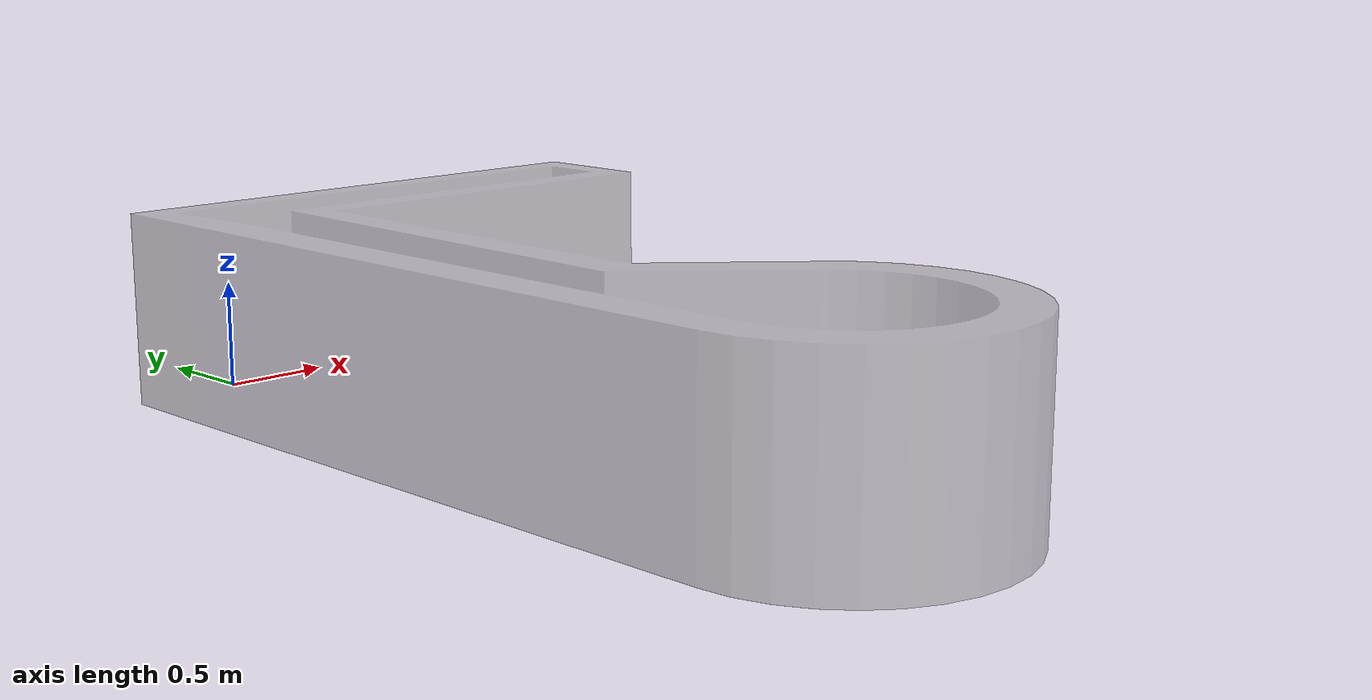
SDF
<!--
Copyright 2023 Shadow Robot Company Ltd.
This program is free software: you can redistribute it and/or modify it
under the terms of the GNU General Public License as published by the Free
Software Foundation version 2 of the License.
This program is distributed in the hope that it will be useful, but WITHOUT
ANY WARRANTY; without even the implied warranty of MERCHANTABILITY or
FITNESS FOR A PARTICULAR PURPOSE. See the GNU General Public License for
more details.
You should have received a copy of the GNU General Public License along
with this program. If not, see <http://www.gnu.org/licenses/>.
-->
<?xml version="1.0" ?>

<sdf version="1.4">
  <model name="laminar_flow">
    <static>true</static>
    <link name="link">
      <inertial>
        <mass>20</mass>
      </inertial>
      <collision name="collision">
        <pose>0.0 0.0 0.0 0 0.0 0.0</pose>
        <geometry>
          <mesh>
            <uri>model://laminar_flow/meshes/laminar_flow.stl</uri>
          </mesh>
        </geometry>
        <material>
          <script>
            <uri>file://media/materials/scripts/gazebo.material</uri>
            <name>Gazebo/DarkGrey</name>
          </script>
        </material>
      </collision>
      <visual name="visual">
        <pose>0.0 0.0 0.0 0 0.0 0.0</pose>
        <geometry>
          <mesh>
            <uri>model://laminar_flow/meshes/laminar_flow.stl</uri>
          </mesh>
        </geometry>
        <material>
          <script>
            <uri>file://media/materials/scripts/gazebo.material</uri>
            <name>Gazebo/GreyTransparent</name>
          </script>
        </material>
      </visual>
    </link>
  </model>
</sdf>
